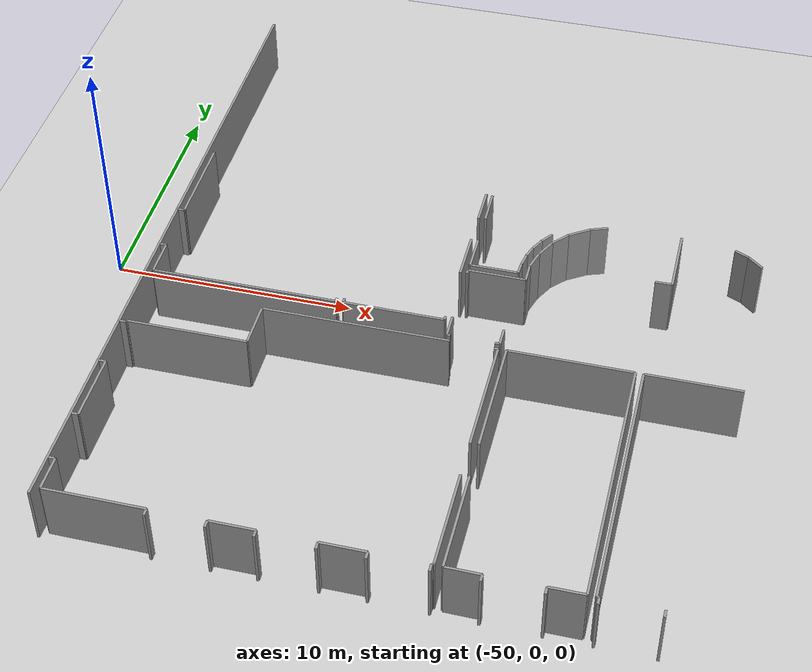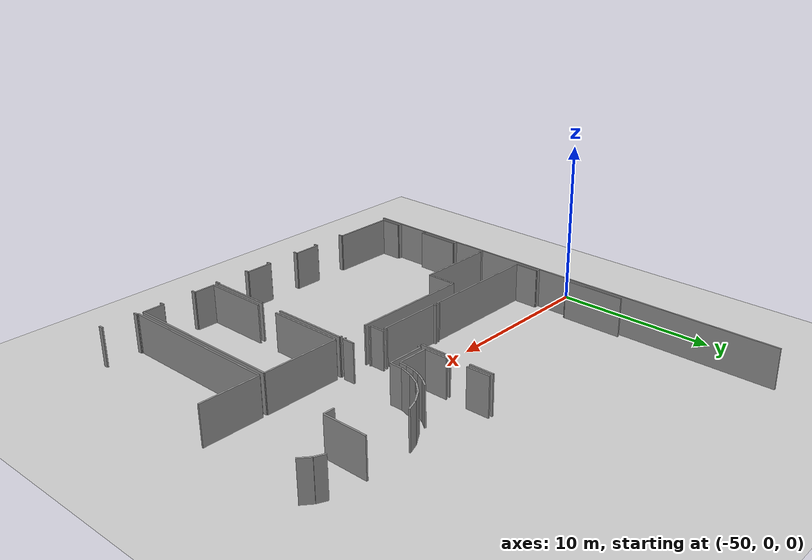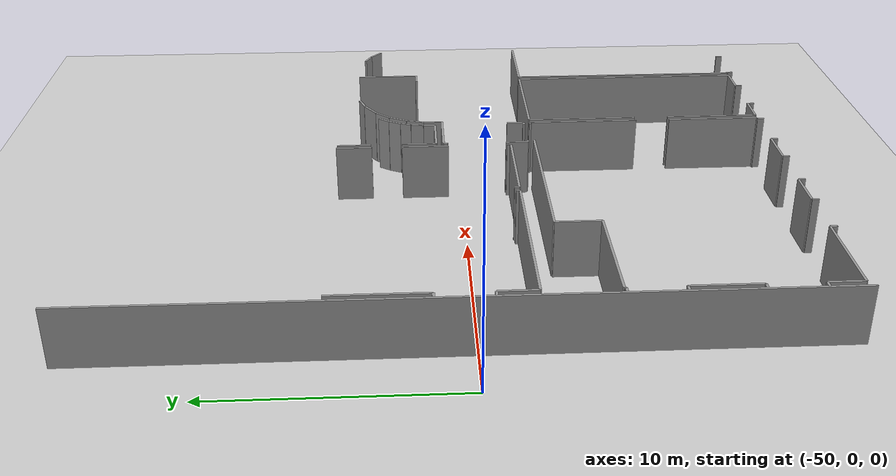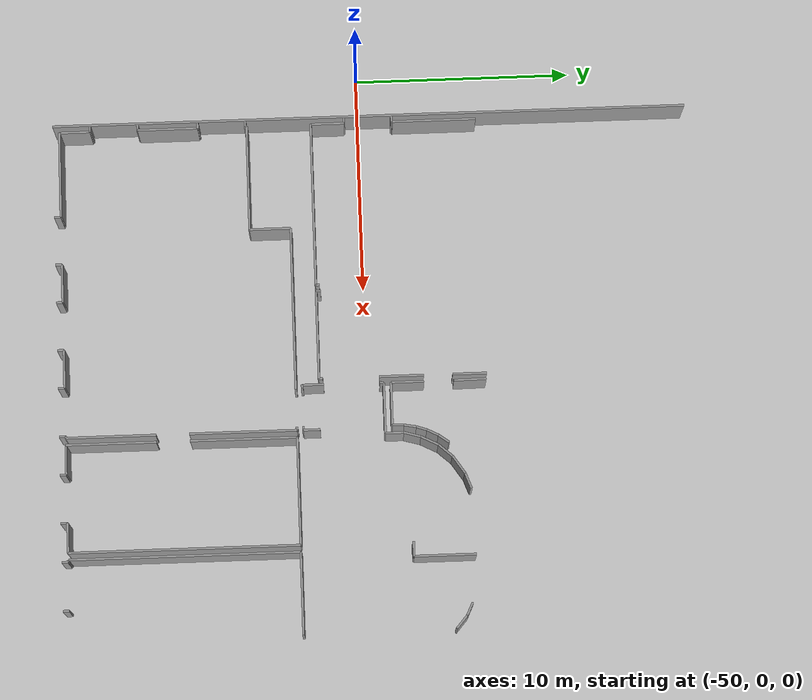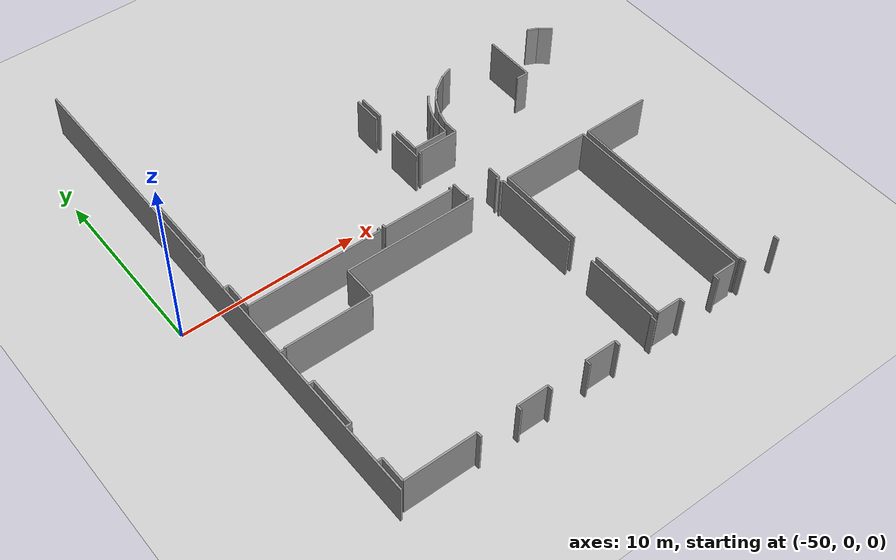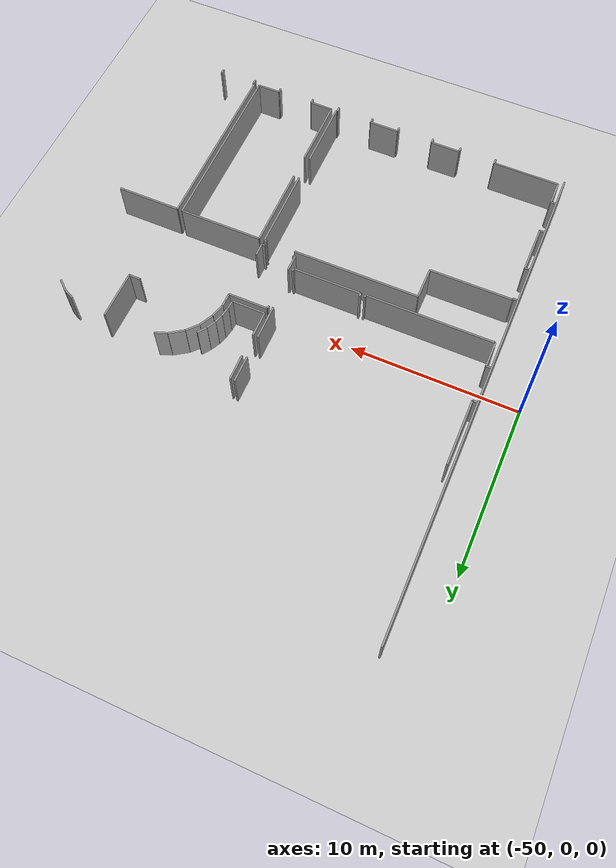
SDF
<sdf version="1.6">
 <world name="default">
  <model name="ground_plane">
   <static>1</static>
   <link name="link">
    <collision name="collision">
     <geometry><plane><normal>0 0 1</normal><size>100 100</size></plane></geometry>
     <surface><friction><ode><mu>100</mu><mu2>50</mu2></ode></friction></surface>
    </collision>
    <visual name="visual">
     <cast_shadows>0</cast_shadows>
     <geometry><plane><normal>0 0 1</normal><size>100 100</size></plane></geometry>
     <material>
      <script><uri>file://media/materials/scripts/gazebo.material</uri><name>Gazebo/Grey</name></script>
     </material>
    </visual>
   </link>
  </model>
  <model name="0510032270_A_40_1_104">
   <static>1</static>
   <link name="Wall_59">
    <collision name="Wall_59_Collision">
     <geometry><box><size>3.86634814542 0.1 2.5</size></box></geometry>
     <pose>1.93317407271 0 1.25 0 0 0</pose>
    </collision>
    <visual name="Wall_59_Visual">
     <pose>1.93317407271 0 1.25 0 0 0</pose>
     <geometry><box><size>3.86634814542 0.1 2.5</size></box></geometry>
     <material>
      <script><uri>file://media/materials/scripts/gazebo.material</uri><name>Gazebo/Grey</name></script>
      <ambient>1 1 1 1</ambient>
     </material>
    </visual>
    <pose>0.304713013203 -13.5831099025 0 0 0 1.57079632679</pose>
   </link>
   <link name="Wall_65">
    <collision name="Wall_65_Collision">
     <geometry><box><size>0.170527466104 0.1 2.5</size></box></geometry>
     <pose>0.0852637330521 0 1.25 0 0 0</pose>
    </collision>
    <visual name="Wall_65_Visual">
     <pose>0.0852637330521 0 1.25 0 0 0</pose>
     <geometry><box><size>0.170527466104 0.1 2.5</size></box></geometry>
     <material>
      <script><uri>file://media/materials/scripts/gazebo.material</uri><name>Gazebo/Grey</name></script>
      <ambient>1 1 1 1</ambient>
     </material>
    </visual>
    <pose>7.89077093155 -17.2157769674 0 0 0 -1.57079632679</pose>
   </link>
   <link name="Wall_66">
    <collision name="Wall_66_Collision">
     <geometry><box><size>7.58605791835 0.1 2.5</size></box></geometry>
     <pose>3.79302895917 0 1.25 0 0 0</pose>
    </collision>
    <visual name="Wall_66_Visual">
     <pose>3.79302895917 0 1.25 0 0 0</pose>
     <geometry><box><size>7.58605791835 0.1 2.5</size></box></geometry>
     <material>
      <script><uri>file://media/materials/scripts/gazebo.material</uri><name>Gazebo/Grey</name></script>
      <ambient>1 1 1 1</ambient>
     </material>
    </visual>
    <pose>7.89077093155 -17.3863044335 0 0 0 3.14159265359</pose>
   </link>
   <link name="Wall_67">
    <collision name="Wall_67_Collision">
     <geometry><box><size>1.54834364715 0.1 2.5</size></box></geometry>
     <pose>0.774171823576 0 1.25 0 0 0</pose>
    </collision>
    <visual name="Wall_67_Visual">
     <pose>0.774171823576 0 1.25 0 0 0</pose>
     <geometry><box><size>1.54834364715 0.1 2.5</size></box></geometry>
     <material>
      <script><uri>file://media/materials/scripts/gazebo.material</uri><name>Gazebo/Grey</name></script>
      <ambient>1 1 1 1</ambient>
     </material>
    </visual>
    <pose>0.304713013203 -17.3863044335 0 0 0 1.57079632679</pose>
   </link>
   <link name="Wall_68">
    <collision name="Wall_68_Collision">
     <geometry><box><size>0.302679898853 0.1 2.5</size></box></geometry>
     <pose>0.151339949426 0 1.25 0 0 0</pose>
    </collision>
    <visual name="Wall_68_Visual">
     <pose>0.151339949426 0 1.25 0 0 0</pose>
     <geometry><box><size>0.302679898853 0.1 2.5</size></box></geometry>
     <material>
      <script><uri>file://media/materials/scripts/gazebo.material</uri><name>Gazebo/Grey</name></script>
      <ambient>1 1 1 1</ambient>
     </material>
    </visual>
    <pose>0.304713013203 -15.8379607863 0 0 0 3.14159265359</pose>
   </link>
   <link name="Wall_69">
    <collision name="Wall_69_Collision">
     <geometry><box><size>0.30115506309 0.1 2.5</size></box></geometry>
     <pose>0.150577531545 0 1.25 0 0 0</pose>
    </collision>
    <visual name="Wall_69_Visual">
     <pose>0.150577531545 0 1.25 0 0 0</pose>
     <geometry><box><size>0.30115506309 0.1 2.5</size></box></geometry>
     <material>
      <script><uri>file://media/materials/scripts/gazebo.material</uri><name>Gazebo/Grey</name></script>
      <ambient>1 1 1 1</ambient>
     </material>
    </visual>
    <pose>0.00203311434997 -13.6230097717 0 0 0 0.0</pose>
   </link>
   <link name="Wall_70">
    <collision name="Wall_70_Collision">
     <geometry><box><size>0.0399289954764 0.1 2.5</size></box></geometry>
     <pose>0.0199644977382 0 1.25 0 0 0</pose>
    </collision>
    <visual name="Wall_70_Visual">
     <pose>0.0199644977382 0 1.25 0 0 0</pose>
     <geometry><box><size>0.0399289954764 0.1 2.5</size></box></geometry>
     <material>
      <script><uri>file://media/materials/scripts/gazebo.material</uri><name>Gazebo/Grey</name></script>
      <ambient>1 1 1 1</ambient>
     </material>
    </visual>
    <pose>0.30318817744 -13.6230097717 0 0 0 1.53259835516</pose>
   </link>
   <link name="Wall_73">
    <collision name="Wall_73_Collision">
     <geometry><box><size>0.59276411749 0.1 2.5</size></box></geometry>
     <pose>0.296382058745 0 1.25 0 0 0</pose>
    </collision>
    <visual name="Wall_73_Visual">
     <pose>0.296382058745 0 1.25 0 0 0</pose>
     <geometry><box><size>0.59276411749 0.1 2.5</size></box></geometry>
     <material>
      <script><uri>file://media/materials/scripts/gazebo.material</uri><name>Gazebo/Grey</name></script>
      <ambient>1 1 1 1</ambient>
     </material>
    </visual>
    <pose>15.4164707676 -11.5172115837 0 0 0 -2.19727579597</pose>
   </link>
   <link name="Wall_74">
    <collision name="Wall_74_Collision">
     <geometry><box><size>0.58760087941 0.1 2.5</size></box></geometry>
     <pose>0.293800439705 0 1.25 0 0 0</pose>
    </collision>
    <visual name="Wall_74_Visual">
     <pose>0.293800439705 0 1.25 0 0 0</pose>
     <geometry><box><size>0.58760087941 0.1 2.5</size></box></geometry>
     <material>
      <script><uri>file://media/materials/scripts/gazebo.material</uri><name>Gazebo/Grey</name></script>
      <ambient>1 1 1 1</ambient>
     </material>
    </visual>
    <pose>15.0689352834 -11.9974077792 0 0 0 -2.03927948805</pose>
   </link>
   <link name="Wall_75">
    <collision name="Wall_75_Collision">
     <geometry><box><size>0.499474075453 0.1 2.5</size></box></geometry>
     <pose>0.249737037726 0 1.25 0 0 0</pose>
    </collision>
    <visual name="Wall_75_Visual">
     <pose>0.249737037726 0 1.25 0 0 0</pose>
     <geometry><box><size>0.499474075453 0.1 2.5</size></box></geometry>
     <material>
      <script><uri>file://media/materials/scripts/gazebo.material</uri><name>Gazebo/Grey</name></script>
      <ambient>1 1 1 1</ambient>
     </material>
    </visual>
    <pose>14.8036138608 -12.5216971422 0 0 0 -1.89254688119</pose>
   </link>
   <link name="Wall_76">
    <collision name="Wall_76_Collision">
     <geometry><box><size>0.577540281886 0.1 2.5</size></box></geometry>
     <pose>0.288770140943 0 1.25 0 0 0</pose>
    </collision>
    <visual name="Wall_76_Visual">
     <pose>0.288770140943 0 1.25 0 0 0</pose>
     <geometry><box><size>0.577540281886 0.1 2.5</size></box></geometry>
     <material>
      <script><uri>file://media/materials/scripts/gazebo.material</uri><name>Gazebo/Grey</name></script>
      <ambient>1 1 1 1</ambient>
     </material>
    </visual>
    <pose>14.6456662897 -12.9955398554 0 0 0 -1.74661560662</pose>
   </link>
   <link name="Wall_77">
    <collision name="Wall_77_Collision">
     <geometry><box><size>0.525243226897 0.1 2.5</size></box></geometry>
     <pose>0.262621613449 0 1.25 0 0 0</pose>
    </collision>
    <visual name="Wall_77_Visual">
     <pose>0.262621613449 0 1.25 0 0 0</pose>
     <geometry><box><size>0.525243226897 0.1 2.5</size></box></geometry>
     <material>
      <script><uri>file://media/materials/scripts/gazebo.material</uri><name>Gazebo/Grey</name></script>
      <ambient>1 1 1 1</ambient>
     </material>
    </visual>
    <pose>14.5446459204 -13.5641765252 0 0 0 -1.63107222903</pose>
   </link>
   <link name="Wall_78">
    <collision name="Wall_78_Collision">
     <geometry><box><size>1.95839739761 0.1 2.5</size></box></geometry>
     <pose>0.979198698807 0 1.25 0 0 0</pose>
    </collision>
    <visual name="Wall_78_Visual">
     <pose>0.979198698807 0 1.25 0 0 0</pose>
     <geometry><box><size>1.95839739761 0.1 2.5</size></box></geometry>
     <material>
      <script><uri>file://media/materials/scripts/gazebo.material</uri><name>Gazebo/Grey</name></script>
      <ambient>1 1 1 1</ambient>
     </material>
    </visual>
    <pose>14.5130055784 -14.0884658882 0 0 0 3.14159265359</pose>
   </link>
   <link name="Wall_79">
    <collision name="Wall_79_Collision">
     <geometry><box><size>1.52470869283 0.1 2.5</size></box></geometry>
     <pose>0.762354346417 0 1.25 0 0 0</pose>
    </collision>
    <visual name="Wall_79_Visual">
     <pose>0.762354346417 0 1.25 0 0 0</pose>
     <geometry><box><size>1.52470869283 0.1 2.5</size></box></geometry>
     <material>
      <script><uri>file://media/materials/scripts/gazebo.material</uri><name>Gazebo/Grey</name></script>
      <ambient>1 1 1 1</ambient>
     </material>
    </visual>
    <pose>12.5546081807 -14.0884658882 0 0 0 1.57079632679</pose>
   </link>
   <link name="Wall_80">
    <collision name="Wall_80_Collision">
     <geometry><box><size>1.49738296589 0.1 2.5</size></box></geometry>
     <pose>0.748691482945 0 1.25 0 0 0</pose>
    </collision>
    <visual name="Wall_80_Visual">
     <pose>0.748691482945 0 1.25 0 0 0</pose>
     <geometry><box><size>1.49738296589 0.1 2.5</size></box></geometry>
     <material>
      <script><uri>file://media/materials/scripts/gazebo.material</uri><name>Gazebo/Grey</name></script>
      <ambient>1 1 1 1</ambient>
     </material>
    </visual>
    <pose>12.5546081807 -11.2013164415 0 0 0 1.58352584372</pose>
   </link>
   <link name="Wall_81">
    <collision name="Wall_81_Collision">
     <geometry><box><size>1.41771605017 0.1 2.5</size></box></geometry>
     <pose>0.708858025084 0 1.25 0 0 0</pose>
    </collision>
    <visual name="Wall_81_Visual">
     <pose>0.708858025084 0 1.25 0 0 0</pose>
     <geometry><box><size>1.41771605017 0.1 2.5</size></box></geometry>
     <material>
      <script><uri>file://media/materials/scripts/gazebo.material</uri><name>Gazebo/Grey</name></script>
      <ambient>1 1 1 1</ambient>
     </material>
    </visual>
    <pose>0.309795799077 -29.056507872 0 0 0 1.57079632679</pose>
   </link>
   <link name="Wall_82">
    <collision name="Wall_82_Collision">
     <geometry><box><size>0.30725440614 0.1 2.5</size></box></geometry>
     <pose>0.15362720307 0 1.25 0 0 0</pose>
    </collision>
    <visual name="Wall_82_Visual">
     <pose>0.15362720307 0 1.25 0 0 0</pose>
     <geometry><box><size>0.30725440614 0.1 2.5</size></box></geometry>
     <material>
      <script><uri>file://media/materials/scripts/gazebo.material</uri><name>Gazebo/Grey</name></script>
      <ambient>1 1 1 1</ambient>
     </material>
    </visual>
    <pose>0.309795799077 -27.6387918218 0 0 0 3.14159265359</pose>
   </link>
   <link name="Wall_83">
    <collision name="Wall_83_Collision">
     <geometry><box><size>0.301409202384 0.1 2.5</size></box></geometry>
     <pose>0.150704601192 0 1.25 0 0 0</pose>
    </collision>
    <visual name="Wall_83_Visual">
     <pose>0.150704601192 0 1.25 0 0 0</pose>
     <geometry><box><size>0.301409202384 0.1 2.5</size></box></geometry>
     <material>
      <script><uri>file://media/materials/scripts/gazebo.material</uri><name>Gazebo/Grey</name></script>
      <ambient>1 1 1 1</ambient>
     </material>
    </visual>
    <pose>0.00254139293747 -25.4234595982 0 0 0 0.0</pose>
   </link>
   <link name="Wall_84">
    <collision name="Wall_84_Collision">
     <geometry><box><size>2.79070358463 0.1 2.5</size></box></geometry>
     <pose>1.39535179232 0 1.25 0 0 0</pose>
    </collision>
    <visual name="Wall_84_Visual">
     <pose>1.39535179232 0 1.25 0 0 0</pose>
     <geometry><box><size>2.79070358463 0.1 2.5</size></box></geometry>
     <material>
      <script><uri>file://media/materials/scripts/gazebo.material</uri><name>Gazebo/Grey</name></script>
      <ambient>1 1 1 1</ambient>
     </material>
    </visual>
    <pose>0.303950595321 -25.4234595982 0 0 0 1.57079632679</pose>
   </link>
   <link name="Wall_85">
    <collision name="Wall_85_Collision">
     <geometry><box><size>0.298486600506 0.1 2.5</size></box></geometry>
     <pose>0.149243300253 0 1.25 0 0 0</pose>
    </collision>
    <visual name="Wall_85_Visual">
     <pose>0.149243300253 0 1.25 0 0 0</pose>
     <geometry><box><size>0.298486600506 0.1 2.5</size></box></geometry>
     <material>
      <script><uri>file://media/materials/scripts/gazebo.material</uri><name>Gazebo/Grey</name></script>
      <ambient>1 1 1 1</ambient>
     </material>
    </visual>
    <pose>0.303950595321 -22.6327560136 0 0 0 3.14159265359</pose>
   </link>
   <link name="Wall_86">
    <collision name="Wall_86_Collision">
     <geometry><box><size>0.293149675337 0.1 2.5</size></box></geometry>
     <pose>0.146574837669 0 1.25 0 0 0</pose>
    </collision>
    <visual name="Wall_86_Visual">
     <pose>0.146574837669 0 1.25 0 0 0</pose>
     <geometry><box><size>0.293149675337 0.1 2.5</size></box></geometry>
     <material>
      <script><uri>file://media/materials/scripts/gazebo.material</uri><name>Gazebo/Grey</name></script>
      <ambient>1 1 1 1</ambient>
     </material>
    </visual>
    <pose>0.00546399481556 -20.426064526 0 0 0 0.0</pose>
   </link>
   <link name="Wall_87">
    <collision name="Wall_87_Collision">
     <geometry><box><size>0.0673469128429 0.1 2.5</size></box></geometry>
     <pose>0.0336734564215 0 1.25 0 0 0</pose>
    </collision>
    <visual name="Wall_87_Visual">
     <pose>0.0336734564215 0 1.25 0 0 0</pose>
     <geometry><box><size>0.0673469128429 0.1 2.5</size></box></geometry>
     <material>
      <script><uri>file://media/materials/scripts/gazebo.material</uri><name>Gazebo/Grey</name></script>
      <ambient>1 1 1 1</ambient>
     </material>
    </visual>
    <pose>0.298613670153 -20.426064526 0 0 0 1.57079632679</pose>
   </link>
   <link name="Wall_88">
    <collision name="Wall_88_Collision">
     <geometry><box><size>4.88887759381 0.1 2.5</size></box></geometry>
     <pose>2.4444387969 0 1.25 0 0 0</pose>
    </collision>
    <visual name="Wall_88_Visual">
     <pose>2.4444387969 0 1.25 0 0 0</pose>
     <geometry><box><size>4.88887759381 0.1 2.5</size></box></geometry>
     <material>
      <script><uri>file://media/materials/scripts/gazebo.material</uri><name>Gazebo/Grey</name></script>
      <ambient>1 1 1 1</ambient>
     </material>
    </visual>
    <pose>0.298613670153 -20.3587176131 0 0 0 0.0</pose>
   </link>
   <link name="Wall_89">
    <collision name="Wall_89_Collision">
     <geometry><box><size>1.89498964382 0.1 2.5</size></box></geometry>
     <pose>0.947494821912 0 1.25 0 0 0</pose>
    </collision>
    <visual name="Wall_89_Visual">
     <pose>0.947494821912 0 1.25 0 0 0</pose>
     <geometry><box><size>1.89498964382 0.1 2.5</size></box></geometry>
     <material>
      <script><uri>file://media/materials/scripts/gazebo.material</uri><name>Gazebo/Grey</name></script>
      <ambient>1 1 1 1</ambient>
     </material>
    </visual>
    <pose>5.18749126396 -20.3587176131 0 0 0 1.57079632679</pose>
   </link>
   <link name="Wall_90">
    <collision name="Wall_90_Collision">
     <geometry><box><size>7.53129090054 0.1 2.5</size></box></geometry>
     <pose>3.76564545027 0 1.25 0 0 0</pose>
    </collision>
    <visual name="Wall_90_Visual">
     <pose>3.76564545027 0 1.25 0 0 0</pose>
     <geometry><box><size>7.53129090054 0.1 2.5</size></box></geometry>
     <material>
      <script><uri>file://media/materials/scripts/gazebo.material</uri><name>Gazebo/Grey</name></script>
      <ambient>1 1 1 1</ambient>
     </material>
    </visual>
    <pose>5.18749126396 -18.4637279693 0 0 0 0.0</pose>
   </link>
   <link name="Wall_91">
    <collision name="Wall_91_Collision">
     <geometry><box><size>0.159091197886 0.1 2.5</size></box></geometry>
     <pose>0.0795455989428 0 1.25 0 0 0</pose>
    </collision>
    <visual name="Wall_91_Visual">
     <pose>0.0795455989428 0 1.25 0 0 0</pose>
     <geometry><box><size>0.159091197886 0.1 2.5</size></box></geometry>
     <material>
      <script><uri>file://media/materials/scripts/gazebo.material</uri><name>Gazebo/Grey</name></script>
      <ambient>1 1 1 1</ambient>
     </material>
    </visual>
    <pose>14.4591280481 -18.4637279693 0 0 0 0.0</pose>
   </link>
   <link name="Wall_92">
    <collision name="Wall_92_Collision">
     <geometry><box><size>4.9278879754 0.1 2.5</size></box></geometry>
     <pose>2.4639439877 0 1.25 0 0 0</pose>
    </collision>
    <visual name="Wall_92_Visual">
     <pose>2.4639439877 0 1.25 0 0 0</pose>
     <geometry><box><size>4.9278879754 0.1 2.5</size></box></geometry>
     <material>
      <script><uri>file://media/materials/scripts/gazebo.material</uri><name>Gazebo/Grey</name></script>
      <ambient>1 1 1 1</ambient>
     </material>
    </visual>
    <pose>14.618219246 -18.4637279693 0 0 0 -1.57079632679</pose>
   </link>
   <link name="Wall_93">
    <collision name="Wall_93_Collision">
     <geometry><box><size>4.1292552448 0.1 2.5</size></box></geometry>
     <pose>2.0646276224 0 1.25 0 0 0</pose>
    </collision>
    <visual name="Wall_93_Visual">
     <pose>2.0646276224 0 1.25 0 0 0</pose>
     <geometry><box><size>4.1292552448 0.1 2.5</size></box></geometry>
     <material>
      <script><uri>file://media/materials/scripts/gazebo.material</uri><name>Gazebo/Grey</name></script>
      <ambient>1 1 1 1</ambient>
     </material>
    </visual>
    <pose>14.618219246 -24.9257277914 0 0 0 -1.57079632679</pose>
   </link>
   <link name="Wall_94">
    <collision name="Wall_94_Collision">
     <geometry><box><size>0.0735733255397 0.1 2.5</size></box></geometry>
     <pose>0.0367866627699 0 1.25 0 0 0</pose>
    </collision>
    <visual name="Wall_94_Visual">
     <pose>0.0367866627699 0 1.25 0 0 0</pose>
     <geometry><box><size>0.0735733255397 0.1 2.5</size></box></geometry>
     <material>
      <script><uri>file://media/materials/scripts/gazebo.material</uri><name>Gazebo/Grey</name></script>
      <ambient>1 1 1 1</ambient>
     </material>
    </visual>
    <pose>14.618219246 -29.0549830362 0 0 0 3.14159265359</pose>
   </link>
   <link name="Wall_95">
    <collision name="Wall_95_Collision">
     <geometry><box><size>0.30318817744 0.1 2.5</size></box></geometry>
     <pose>0.15159408872 0 1.25 0 0 0</pose>
    </collision>
    <visual name="Wall_95_Visual">
     <pose>0.15159408872 0 1.25 0 0 0</pose>
     <geometry><box><size>0.30318817744 0.1 2.5</size></box></geometry>
     <material>
      <script><uri>file://media/materials/scripts/gazebo.material</uri><name>Gazebo/Grey</name></script>
      <ambient>1 1 1 1</ambient>
     </material>
    </visual>
    <pose>14.5446459204 -29.0549830362 0 0 0 -1.57079632679</pose>
   </link>
   <link name="Wall_96">
    <collision name="Wall_96_Collision">
     <geometry><box><size>0.295818137921 0.1 2.5</size></box></geometry>
     <pose>0.147909068961 0 1.25 0 0 0</pose>
    </collision>
    <visual name="Wall_96_Visual">
     <pose>0.147909068961 0 1.25 0 0 0</pose>
     <geometry><box><size>0.295818137921 0.1 2.5</size></box></geometry>
     <material>
      <script><uri>file://media/materials/scripts/gazebo.material</uri><name>Gazebo/Grey</name></script>
      <ambient>1 1 1 1</ambient>
     </material>
    </visual>
    <pose>12.3032644192 -29.3581712136 0 0 0 1.57079632679</pose>
   </link>
   <link name="Wall_97">
    <collision name="Wall_97_Collision">
     <geometry><box><size>1.76741171836 0.1 2.5</size></box></geometry>
     <pose>0.883705859181 0 1.25 0 0 0</pose>
    </collision>
    <visual name="Wall_97_Visual">
     <pose>0.883705859181 0 1.25 0 0 0</pose>
     <geometry><box><size>1.76741171836 0.1 2.5</size></box></geometry>
     <material>
      <script><uri>file://media/materials/scripts/gazebo.material</uri><name>Gazebo/Grey</name></script>
      <ambient>1 1 1 1</ambient>
     </material>
    </visual>
    <pose>12.3032644192 -29.0623530757 0 0 0 3.14159265359</pose>
   </link>
   <link name="Wall_98">
    <collision name="Wall_98_Collision">
     <geometry><box><size>0.296199346862 0.1 2.5</size></box></geometry>
     <pose>0.148099673431 0 1.25 0 0 0</pose>
    </collision>
    <visual name="Wall_98_Visual">
     <pose>0.148099673431 0 1.25 0 0 0</pose>
     <geometry><box><size>0.296199346862 0.1 2.5</size></box></geometry>
     <material>
      <script><uri>file://media/materials/scripts/gazebo.material</uri><name>Gazebo/Grey</name></script>
      <ambient>1 1 1 1</ambient>
     </material>
    </visual>
    <pose>10.5358527009 -29.0623530757 0 0 0 -1.57079632679</pose>
   </link>
   <link name="Wall_99">
    <collision name="Wall_99_Collision">
     <geometry><box><size>0.293912093218 0.1 2.5</size></box></geometry>
     <pose>0.146956046609 0 1.25 0 0 0</pose>
    </collision>
    <visual name="Wall_99_Visual">
     <pose>0.146956046609 0 1.25 0 0 0</pose>
     <geometry><box><size>0.293912093218 0.1 2.5</size></box></geometry>
     <material>
      <script><uri>file://media/materials/scripts/gazebo.material</uri><name>Gazebo/Grey</name></script>
      <ambient>1 1 1 1</ambient>
     </material>
    </visual>
    <pose>8.30476384106 -29.3585524226 0 0 0 1.57079632679</pose>
   </link>
   <link name="Wall_100">
    <collision name="Wall_100_Collision">
     <geometry><box><size>1.77351106141 0.1 2.5</size></box></geometry>
     <pose>0.886755530706 0 1.25 0 0 0</pose>
    </collision>
    <visual name="Wall_100_Visual">
     <pose>0.886755530706 0 1.25 0 0 0</pose>
     <geometry><box><size>1.77351106141 0.1 2.5</size></box></geometry>
     <material>
      <script><uri>file://media/materials/scripts/gazebo.material</uri><name>Gazebo/Grey</name></script>
      <ambient>1 1 1 1</ambient>
     </material>
    </visual>
    <pose>8.30476384106 -29.0646403294 0 0 0 3.14159265359</pose>
   </link>
   <link name="Wall_101">
    <collision name="Wall_101_Collision">
     <geometry><box><size>0.299630227328 0.1 2.5</size></box></geometry>
     <pose>0.149815113664 0 1.25 0 0 0</pose>
    </collision>
    <visual name="Wall_101_Visual">
     <pose>0.149815113664 0 1.25 0 0 0</pose>
     <geometry><box><size>0.299630227328 0.1 2.5</size></box></geometry>
     <material>
      <script><uri>file://media/materials/scripts/gazebo.material</uri><name>Gazebo/Grey</name></script>
      <ambient>1 1 1 1</ambient>
     </material>
    </visual>
    <pose>6.53125277965 -29.0646403294 0 0 0 -1.57079632679</pose>
   </link>
   <link name="Wall_102">
    <collision name="Wall_102_Collision">
     <geometry><box><size>0.298740739799 0.1 2.5</size></box></geometry>
     <pose>0.1493703699 0 1.25 0 0 0</pose>
    </collision>
    <visual name="Wall_102_Visual">
     <pose>0.1493703699 0 1.25 0 0 0</pose>
     <geometry><box><size>0.298740739799 0.1 2.5</size></box></geometry>
     <material>
      <script><uri>file://media/materials/scripts/gazebo.material</uri><name>Gazebo/Grey</name></script>
      <ambient>1 1 1 1</ambient>
     </material>
    </visual>
    <pose>4.29635183044 -29.3642705567 0 0 0 1.57079632679</pose>
   </link>
   <link name="Wall_103">
    <collision name="Wall_103_Collision">
     <geometry><box><size>3.9865662401 0.1 2.5</size></box></geometry>
     <pose>1.99328312005 0 1.25 0 0 0</pose>
    </collision>
    <visual name="Wall_103_Visual">
     <pose>1.99328312005 0 1.25 0 0 0</pose>
     <geometry><box><size>3.9865662401 0.1 2.5</size></box></geometry>
     <material>
      <script><uri>file://media/materials/scripts/gazebo.material</uri><name>Gazebo/Grey</name></script>
      <ambient>1 1 1 1</ambient>
     </material>
    </visual>
    <pose>4.29635183044 -29.0655298169 0 0 0 3.13932956499</pose>
   </link>
   <link name="Wall_104">
    <collision name="Wall_104_Collision">
     <geometry><box><size>4.14831569183 0.1 2.5</size></box></geometry>
     <pose>2.07415784592 0 1.25 0 0 0</pose>
    </collision>
    <visual name="Wall_104_Visual">
     <pose>2.07415784592 0 1.25 0 0 0</pose>
     <geometry><box><size>4.14831569183 0.1 2.5</size></box></geometry>
     <material>
      <script><uri>file://media/materials/scripts/gazebo.material</uri><name>Gazebo/Grey</name></script>
      <ambient>1 1 1 1</ambient>
     </material>
    </visual>
    <pose>14.9427551241 -29.0615906578 0 0 0 1.57079632679</pose>
   </link>
   <link name="Wall_105">
    <collision name="Wall_105_Collision">
     <geometry><box><size>4.90450716037 0.1 2.5</size></box></geometry>
     <pose>2.45225358019 0 1.25 0 0 0</pose>
    </collision>
    <visual name="Wall_105_Visual">
     <pose>2.45225358019 0 1.25 0 0 0</pose>
     <geometry><box><size>4.90450716037 0.1 2.5</size></box></geometry>
     <material>
      <script><uri>file://media/materials/scripts/gazebo.material</uri><name>Gazebo/Grey</name></script>
      <ambient>1 1 1 1</ambient>
     </material>
    </visual>
    <pose>14.9427551241 -23.3682351297 0 0 0 1.57079632679</pose>
   </link>
   <link name="Wall_106">
    <collision name="Wall_106_Collision">
     <geometry><box><size>4.96245091935 0.1 2.5</size></box></geometry>
     <pose>2.48122545967 0 1.25 0 0 0</pose>
    </collision>
    <visual name="Wall_106_Visual">
     <pose>2.48122545967 0 1.25 0 0 0</pose>
     <geometry><box><size>4.96245091935 0.1 2.5</size></box></geometry>
     <material>
      <script><uri>file://media/materials/scripts/gazebo.material</uri><name>Gazebo/Grey</name></script>
      <ambient>1 1 1 1</ambient>
     </material>
    </visual>
    <pose>14.9427551241 -18.4637279693 0 0 0 0.0</pose>
   </link>
   <link name="Wall_107">
    <collision name="Wall_107_Collision">
     <geometry><box><size>10.5986251064 0.1 2.5</size></box></geometry>
     <pose>5.29931255321 0 1.25 0 0 0</pose>
    </collision>
    <visual name="Wall_107_Visual">
     <pose>5.29931255321 0 1.25 0 0 0</pose>
     <geometry><box><size>10.5986251064 0.1 2.5</size></box></geometry>
     <material>
      <script><uri>file://media/materials/scripts/gazebo.material</uri><name>Gazebo/Grey</name></script>
      <ambient>1 1 1 1</ambient>
     </material>
    </visual>
    <pose>19.9052060434 -18.4637279693 0 0 0 -1.57079632679</pose>
   </link>
   <link name="Wall_108">
    <collision name="Wall_108_Collision">
     <geometry><box><size>1.36790474859 0.1 2.5</size></box></geometry>
     <pose>0.683952374296 0 1.25 0 0 0</pose>
    </collision>
    <visual name="Wall_108_Visual">
     <pose>0.683952374296 0 1.25 0 0 0</pose>
     <geometry><box><size>1.36790474859 0.1 2.5</size></box></geometry>
     <material>
      <script><uri>file://media/materials/scripts/gazebo.material</uri><name>Gazebo/Grey</name></script>
      <ambient>1 1 1 1</ambient>
     </material>
    </visual>
    <pose>19.9052060434 -29.0623530757 0 0 0 3.14159265359</pose>
   </link>
   <link name="Wall_109">
    <collision name="Wall_109_Collision">
     <geometry><box><size>0.301027993443 0.1 2.5</size></box></geometry>
     <pose>0.150513996722 0 1.25 0 0 0</pose>
    </collision>
    <visual name="Wall_109_Visual">
     <pose>0.150513996722 0 1.25 0 0 0</pose>
     <geometry><box><size>0.301027993443 0.1 2.5</size></box></geometry>
     <material>
      <script><uri>file://media/materials/scripts/gazebo.material</uri><name>Gazebo/Grey</name></script>
      <ambient>1 1 1 1</ambient>
     </material>
    </visual>
    <pose>18.5373012948 -29.0623530757 0 0 0 -1.57079632679</pose>
   </link>
   <link name="Wall_110">
    <collision name="Wall_110_Collision">
     <geometry><box><size>0.286669123347 0.1 2.5</size></box></geometry>
     <pose>0.143334561673 0 1.25 0 0 0</pose>
    </collision>
    <visual name="Wall_110_Visual">
     <pose>0.143334561673 0 1.25 0 0 0</pose>
     <geometry><box><size>0.286669123347 0.1 2.5</size></box></geometry>
     <material>
      <script><uri>file://media/materials/scripts/gazebo.material</uri><name>Gazebo/Grey</name></script>
      <ambient>1 1 1 1</ambient>
     </material>
    </visual>
    <pose>16.3112952209 -29.3633810692 0 0 0 1.57079632679</pose>
   </link>
   <link name="Wall_111">
    <collision name="Wall_111_Collision">
     <geometry><box><size>1.36862363343 0.1 2.5</size></box></geometry>
     <pose>0.684311816713 0 1.25 0 0 0</pose>
    </collision>
    <visual name="Wall_111_Visual">
     <pose>0.684311816713 0 1.25 0 0 0</pose>
     <geometry><box><size>1.36862363343 0.1 2.5</size></box></geometry>
     <material>
      <script><uri>file://media/materials/scripts/gazebo.material</uri><name>Gazebo/Grey</name></script>
      <ambient>1 1 1 1</ambient>
     </material>
    </visual>
    <pose>16.3112952209 -29.0767119458 0 0 0 3.13054389243</pose>
   </link>
   <link name="Wall_112">
    <collision name="Wall_112_Collision">
     <geometry><box><size>10.5852827935 0.1 2.5</size></box></geometry>
     <pose>5.29264139675 0 1.25 0 0 0</pose>
    </collision>
    <visual name="Wall_112_Visual">
     <pose>5.29264139675 0 1.25 0 0 0</pose>
     <geometry><box><size>10.5852827935 0.1 2.5</size></box></geometry>
     <material>
      <script><uri>file://media/materials/scripts/gazebo.material</uri><name>Gazebo/Grey</name></script>
      <ambient>1 1 1 1</ambient>
     </material>
    </visual>
    <pose>20.2169078872 -29.0519333647 0 0 0 1.57079632679</pose>
   </link>
   <link name="Wall_113">
    <collision name="Wall_113_Collision">
     <geometry><box><size>3.79213947164 0.1 2.5</size></box></geometry>
     <pose>1.89606973582 0 1.25 0 0 0</pose>
    </collision>
    <visual name="Wall_113_Visual">
     <pose>1.89606973582 0 1.25 0 0 0</pose>
     <geometry><box><size>3.79213947164 0.1 2.5</size></box></geometry>
     <material>
      <script><uri>file://media/materials/scripts/gazebo.material</uri><name>Gazebo/Grey</name></script>
      <ambient>1 1 1 1</ambient>
     </material>
    </visual>
    <pose>20.2169078872 -18.4666505712 0 0 0 0.0</pose>
   </link>
   <link name="Wall_122">
    <collision name="Wall_122_Collision">
     <geometry><box><size>0.297215904037 0.1 2.5</size></box></geometry>
     <pose>0.148607952019 0 1.25 0 0 0</pose>
    </collision>
    <visual name="Wall_122_Visual">
     <pose>0.148607952019 0 1.25 0 0 0</pose>
     <geometry><box><size>0.297215904037 0.1 2.5</size></box></geometry>
     <material>
      <script><uri>file://media/materials/scripts/gazebo.material</uri><name>Gazebo/Grey</name></script>
      <ambient>1 1 1 1</ambient>
     </material>
    </visual>
    <pose>22.5436801911 -29.0613365185 0 0 0 -1.57079632679</pose>
   </link>
   <link name="Wall_123">
    <collision name="Wall_123_Collision">
     <geometry><box><size>0.290735352046 0.1 2.5</size></box></geometry>
     <pose>0.145367676023 0 1.25 0 0 0</pose>
    </collision>
    <visual name="Wall_123_Visual">
     <pose>0.145367676023 0 1.25 0 0 0</pose>
     <geometry><box><size>0.290735352046 0.1 2.5</size></box></geometry>
     <material>
      <script><uri>file://media/materials/scripts/gazebo.material</uri><name>Gazebo/Grey</name></script>
      <ambient>1 1 1 1</ambient>
     </material>
    </visual>
    <pose>20.312718401 -29.3585524226 0 0 0 1.57079632679</pose>
   </link>
   <link name="Wall_124">
    <collision name="Wall_124_Collision">
     <geometry><box><size>0.0971182097005 0.1 2.5</size></box></geometry>
     <pose>0.0485591048503 0 1.25 0 0 0</pose>
    </collision>
    <visual name="Wall_124_Visual">
     <pose>0.0485591048503 0 1.25 0 0 0</pose>
     <geometry><box><size>0.0971182097005 0.1 2.5</size></box></geometry>
     <material>
      <script><uri>file://media/materials/scripts/gazebo.material</uri><name>Gazebo/Grey</name></script>
      <ambient>1 1 1 1</ambient>
     </material>
    </visual>
    <pose>20.312718401 -29.0678170705 0 0 0 2.97730437605</pose>
   </link>
   <link name="Wall_131">
    <collision name="Wall_131_Collision">
     <geometry><box><size>2.33121974154 0.1 2.5</size></box></geometry>
     <pose>1.16560987077 0 1.25 0 0 0</pose>
    </collision>
    <visual name="Wall_131_Visual">
     <pose>1.16560987077 0 1.25 0 0 0</pose>
     <geometry><box><size>2.33121974154 0.1 2.5</size></box></geometry>
     <material>
      <script><uri>file://media/materials/scripts/gazebo.material</uri><name>Gazebo/Grey</name></script>
      <ambient>1 1 1 1</ambient>
     </material>
    </visual>
    <pose>12.5608345934 -14.417067995 0 0 0 0.0</pose>
   </link>
   <link name="Wall_132">
    <collision name="Wall_132_Collision">
     <geometry><box><size>0.83395809243 0.1 2.5</size></box></geometry>
     <pose>0.416979046215 0 1.25 0 0 0</pose>
    </collision>
    <visual name="Wall_132_Visual">
     <pose>0.416979046215 0 1.25 0 0 0</pose>
     <geometry><box><size>0.83395809243 0.1 2.5</size></box></geometry>
     <material>
      <script><uri>file://media/materials/scripts/gazebo.material</uri><name>Gazebo/Grey</name></script>
      <ambient>1 1 1 1</ambient>
     </material>
    </visual>
    <pose>14.892054335 -14.417067995 0 0 0 1.57079632679</pose>
   </link>
   <link name="Wall_133">
    <collision name="Wall_133_Collision">
     <geometry><box><size>0.807875447858 0.1 2.5</size></box></geometry>
     <pose>0.403937723929 0 1.25 0 0 0</pose>
    </collision>
    <visual name="Wall_133_Visual">
     <pose>0.403937723929 0 1.25 0 0 0</pose>
     <geometry><box><size>0.807875447858 0.1 2.5</size></box></geometry>
     <material>
      <script><uri>file://media/materials/scripts/gazebo.material</uri><name>Gazebo/Grey</name></script>
      <ambient>1 1 1 1</ambient>
     </material>
    </visual>
    <pose>14.892054335 -13.5831099025 0 0 0 1.29357693095</pose>
   </link>
   <link name="Wall_134">
    <collision name="Wall_134_Collision">
     <geometry><box><size>0.884350416471 0.1 2.5</size></box></geometry>
     <pose>0.442175208235 0 1.25 0 0 0</pose>
    </collision>
    <visual name="Wall_134_Visual">
     <pose>0.442175208235 0 1.25 0 0 0</pose>
     <geometry><box><size>0.884350416471 0.1 2.5</size></box></geometry>
     <material>
      <script><uri>file://media/materials/scripts/gazebo.material</uri><name>Gazebo/Grey</name></script>
      <ambient>1 1 1 1</ambient>
     </material>
    </visual>
    <pose>15.1131555205 -12.8060790119 0 0 0 1.10400003266</pose>
   </link>
   <link name="Wall_135">
    <collision name="Wall_135_Collision">
     <geometry><box><size>0.841640124987 0.1 2.5</size></box></geometry>
     <pose>0.420820062494 0 1.25 0 0 0</pose>
    </collision>
    <visual name="Wall_135_Visual">
     <pose>0.420820062494 0 1.25 0 0 0</pose>
     <geometry><box><size>0.841640124987 0.1 2.5</size></box></geometry>
     <material>
      <script><uri>file://media/materials/scripts/gazebo.material</uri><name>Gazebo/Grey</name></script>
      <ambient>1 1 1 1</ambient>
     </material>
    </visual>
    <pose>15.5111376545 -12.0163411566 0 0 0 0.849068937258</pose>
   </link>
   <link name="Wall_136">
    <collision name="Wall_136_Collision">
     <geometry><box><size>0.974186895966 0.1 2.5</size></box></geometry>
     <pose>0.487093447983 0 1.25 0 0 0</pose>
    </collision>
    <visual name="Wall_136_Visual">
     <pose>0.487093447983 0 1.25 0 0 0</pose>
     <geometry><box><size>0.974186895966 0.1 2.5</size></box></geometry>
     <material>
      <script><uri>file://media/materials/scripts/gazebo.material</uri><name>Gazebo/Grey</name></script>
      <ambient>1 1 1 1</ambient>
     </material>
    </visual>
    <pose>16.0671944293 -11.3845508723 0 0 0 0.591511741882</pose>
   </link>
   <link name="Wall_137">
    <collision name="Wall_137_Collision">
     <geometry><box><size>0.741552864063 0.1 2.5</size></box></geometry>
     <pose>0.370776432032 0 1.25 0 0 0</pose>
    </collision>
    <visual name="Wall_137_Visual">
     <pose>0.370776432032 0 1.25 0 0 0</pose>
     <geometry><box><size>0.741552864063 0.1 2.5</size></box></geometry>
     <material>
      <script><uri>file://media/materials/scripts/gazebo.material</uri><name>Gazebo/Grey</name></script>
      <ambient>1 1 1 1</ambient>
     </material>
    </visual>
    <pose>16.875865662 -10.8413281319 0 0 0 0.356925542905</pose>
   </link>
   <link name="Wall_141">
    <collision name="Wall_141_Collision">
     <geometry><box><size>0.689606973582 0.1 2.5</size></box></geometry>
     <pose>0.344803486791 0 1.25 0 0 0</pose>
    </collision>
    <visual name="Wall_141_Visual">
     <pose>0.344803486791 0 1.25 0 0 0</pose>
     <geometry><box><size>0.689606973582 0.1 2.5</size></box></geometry>
     <material>
      <script><uri>file://media/materials/scripts/gazebo.material</uri><name>Gazebo/Grey</name></script>
      <ambient>1 1 1 1</ambient>
     </material>
    </visual>
    <pose>19.9019022326 -13.3174072709 0 0 0 0.0</pose>
   </link>
   <link name="Wall_142">
    <collision name="Wall_142_Collision">
     <geometry><box><size>2.85156994549 0.1 2.5</size></box></geometry>
     <pose>1.42578497274 0 1.25 0 0 0</pose>
    </collision>
    <visual name="Wall_142_Visual">
     <pose>1.42578497274 0 1.25 0 0 0</pose>
     <geometry><box><size>2.85156994549 0.1 2.5</size></box></geometry>
     <material>
      <script><uri>file://media/materials/scripts/gazebo.material</uri><name>Gazebo/Grey</name></script>
      <ambient>1 1 1 1</ambient>
     </material>
    </visual>
    <pose>20.5915092062 -13.3174072709 0 0 0 1.57079632679</pose>
   </link>
   <link name="Wall_146">
    <collision name="Wall_146_Collision">
     <geometry><box><size>0.638789579604 0.1 2.5</size></box></geometry>
     <pose>0.319394789802 0 1.25 0 0 0</pose>
    </collision>
    <visual name="Wall_146_Visual">
     <pose>0.319394789802 0 1.25 0 0 0</pose>
     <geometry><box><size>0.638789579604 0.1 2.5</size></box></geometry>
     <material>
      <script><uri>file://media/materials/scripts/gazebo.material</uri><name>Gazebo/Grey</name></script>
      <ambient>1 1 1 1</ambient>
     </material>
    </visual>
    <pose>22.7929908383 -10.7330647928 0 0 0 -0.437312148831</pose>
   </link>
   <link name="Wall_147">
    <collision name="Wall_147_Collision">
     <geometry><box><size>0.763938764561 0.1 2.5</size></box></geometry>
     <pose>0.38196938228 0 1.25 0 0 0</pose>
    </collision>
    <visual name="Wall_147_Visual">
     <pose>0.38196938228 0 1.25 0 0 0</pose>
     <geometry><box><size>0.763938764561 0.1 2.5</size></box></geometry>
     <material>
      <script><uri>file://media/materials/scripts/gazebo.material</uri><name>Gazebo/Grey</name></script>
      <ambient>1 1 1 1</ambient>
     </material>
    </visual>
    <pose>23.3716660101 -11.003596071 0 0 0 -0.703917410546</pose>
   </link>
   <link name="Wall_161">
    <collision name="Wall_161_Collision">
     <geometry><box><size>0.774108288753 0.1 2.5</size></box></geometry>
     <pose>0.387054144377 0 1.25 0 0 0</pose>
    </collision>
    <visual name="Wall_161_Visual">
     <pose>0.387054144377 0 1.25 0 0 0</pose>
     <geometry><box><size>0.774108288753 0.1 2.5</size></box></geometry>
     <material>
      <script><uri>file://media/materials/scripts/gazebo.material</uri><name>Gazebo/Grey</name></script>
      <ambient>1 1 1 1</ambient>
     </material>
    </visual>
    <pose>14.6259704944 -17.3973594927 0 0 0 -1.57079632679</pose>
   </link>
   <link name="Wall_162">
    <collision name="Wall_162_Collision">
     <geometry><box><size>0.185648754082 0.1 2.5</size></box></geometry>
     <pose>0.0928243770411 0 1.25 0 0 0</pose>
    </collision>
    <visual name="Wall_162_Visual">
     <pose>0.0928243770411 0 1.25 0 0 0</pose>
     <geometry><box><size>0.185648754082 0.1 2.5</size></box></geometry>
     <material>
      <script><uri>file://media/materials/scripts/gazebo.material</uri><name>Gazebo/Grey</name></script>
      <ambient>1 1 1 1</ambient>
     </material>
    </visual>
    <pose>14.6259704944 -18.1714677815 0 0 0 3.14159265359</pose>
   </link>
   <link name="Wall_163">
    <collision name="Wall_163_Collision">
     <geometry><box><size>0.142826283086 0.1 2.5</size></box></geometry>
     <pose>0.0714131415429 0 1.25 0 0 0</pose>
    </collision>
    <visual name="Wall_163_Visual">
     <pose>0.0714131415429 0 1.25 0 0 0</pose>
     <geometry><box><size>0.142826283086 0.1 2.5</size></box></geometry>
     <material>
      <script><uri>file://media/materials/scripts/gazebo.material</uri><name>Gazebo/Grey</name></script>
      <ambient>1 1 1 1</ambient>
     </material>
    </visual>
    <pose>12.681169549 -18.1714677815 0 0 0 3.14159265359</pose>
   </link>
   <link name="Wall_164">
    <collision name="Wall_164_Collision">
     <geometry><box><size>0.992795151022 0.1 2.5</size></box></geometry>
     <pose>0.496397575511 0 1.25 0 0 0</pose>
    </collision>
    <visual name="Wall_164_Visual">
     <pose>0.496397575511 0 1.25 0 0 0</pose>
     <geometry><box><size>0.992795151022 0.1 2.5</size></box></geometry>
     <material>
      <script><uri>file://media/materials/scripts/gazebo.material</uri><name>Gazebo/Grey</name></script>
      <ambient>1 1 1 1</ambient>
     </material>
    </visual>
    <pose>12.5383432659 -18.1714677815 0 0 0 1.57079632679</pose>
   </link>
   <link name="Wall_165">
    <collision name="Wall_165_Collision">
     <geometry><box><size>0.186627766142 0.1 2.5</size></box></geometry>
     <pose>0.0933138830712 0 1.25 0 0 0</pose>
    </collision>
    <visual name="Wall_165_Visual">
     <pose>0.0933138830712 0 1.25 0 0 0</pose>
     <geometry><box><size>0.186627766142 0.1 2.5</size></box></geometry>
     <material>
      <script><uri>file://media/materials/scripts/gazebo.material</uri><name>Gazebo/Grey</name></script>
      <ambient>1 1 1 1</ambient>
     </material>
    </visual>
    <pose>12.5383432659 -14.6023355401 0 0 0 1.44998831509</pose>
   </link>
   <link name="Wall_569">
    <collision name="Wall_569_Collision">
     <geometry><box><size>2.04658373254 0.1 2.5</size></box></geometry>
     <pose>1.02329186627 0 1.25 0 0 0</pose>
    </collision>
    <visual name="Wall_569_Visual">
     <pose>1.02329186627 0 1.25 0 0 0</pose>
     <geometry><box><size>2.04658373254 0.1 2.5</size></box></geometry>
     <material>
      <script><uri>file://media/materials/scripts/gazebo.material</uri><name>Gazebo/Grey</name></script>
      <ambient>1 1 1 1</ambient>
     </material>
    </visual>
    <pose>12.2690826842 -14.6174568281 0 0 0 1.57079632679</pose>
   </link>
   <link name="Wall_570">
    <collision name="Wall_570_Collision">
     <geometry><box><size>1.56676874595 0.1 2.5</size></box></geometry>
     <pose>0.783384372975 0 1.25 0 0 0</pose>
    </collision>
    <visual name="Wall_570_Visual">
     <pose>0.783384372975 0 1.25 0 0 0</pose>
     <geometry><box><size>1.56676874595 0.1 2.5</size></box></geometry>
     <material>
      <script><uri>file://media/materials/scripts/gazebo.material</uri><name>Gazebo/Grey</name></script>
      <ambient>1 1 1 1</ambient>
     </material>
    </visual>
    <pose>12.2690826842 -11.239310266 0 0 0 1.57079632679</pose>
   </link>
   <link name="Wall_576">
    <collision name="Wall_576_Collision">
     <geometry><box><size>0.211443892397 0.1 2.5</size></box></geometry>
     <pose>0.105721946199 0 1.25 0 0 0</pose>
    </collision>
    <visual name="Wall_576_Visual">
     <pose>0.105721946199 0 1.25 0 0 0</pose>
     <geometry><box><size>0.211443892397 0.1 2.5</size></box></geometry>
     <material>
      <script><uri>file://media/materials/scripts/gazebo.material</uri><name>Gazebo/Grey</name></script>
      <ambient>1 1 1 1</ambient>
     </material>
    </visual>
    <pose>8.17807540313 -17.1732086357 0 0 0 -1.57079632679</pose>
   </link>
   <link name="Wall_577">
    <collision name="Wall_577_Collision">
     <geometry><box><size>4.08300189334 0.1 2.5</size></box></geometry>
     <pose>2.04150094667 0 1.25 0 0 0</pose>
    </collision>
    <visual name="Wall_577_Visual">
     <pose>2.04150094667 0 1.25 0 0 0</pose>
     <geometry><box><size>4.08300189334 0.1 2.5</size></box></geometry>
     <material>
      <script><uri>file://media/materials/scripts/gazebo.material</uri><name>Gazebo/Grey</name></script>
      <ambient>1 1 1 1</ambient>
     </material>
    </visual>
    <pose>8.17807540313 -17.3846525281 0 0 0 0.0</pose>
   </link>
   <link name="Wall_578">
    <collision name="Wall_578_Collision">
     <geometry><box><size>0.179093071055 0.1 2.5</size></box></geometry>
     <pose>0.0895465355275 0 1.25 0 0 0</pose>
    </collision>
    <visual name="Wall_578_Visual">
     <pose>0.0895465355275 0 1.25 0 0 0</pose>
     <geometry><box><size>0.179093071055 0.1 2.5</size></box></geometry>
     <material>
      <script><uri>file://media/materials/scripts/gazebo.material</uri><name>Gazebo/Grey</name></script>
      <ambient>1 1 1 1</ambient>
     </material>
    </visual>
    <pose>12.2610772965 -17.3846525281 0 0 0 1.52608183298</pose>
   </link>
   <link name="Wall_581">
    <collision name="Wall_581_Collision">
     <geometry><box><size>29.3642705567 0.1 2.5</size></box></geometry>
     <pose>14.6821352783 0 1.25 0 0 0</pose>
    </collision>
    <visual name="Wall_581_Visual">
     <pose>14.6821352783 0 1.25 0 0 0</pose>
     <geometry><box><size>29.3642705567 0.1 2.5</size></box></geometry>
     <material>
      <script><uri>file://media/materials/scripts/gazebo.material</uri><name>Gazebo/Grey</name></script>
      <ambient>1 1 1 1</ambient>
     </material>
    </visual>
    <pose>0.0 -29.3642705567 0 0 0 1.57079632679</pose>
   </link>
   <pose>-47.8 15.2142705567 0 0 0 0</pose>
  </model>
 </world>
</sdf>
